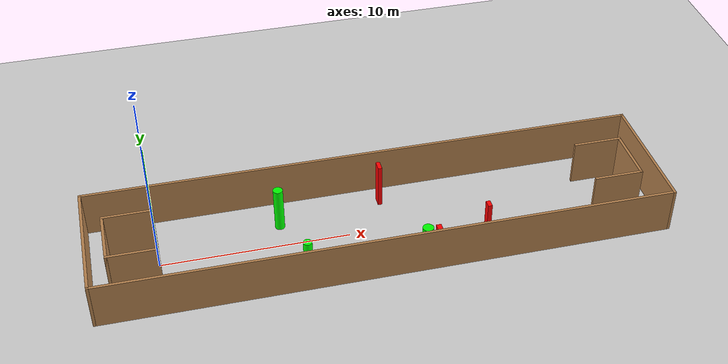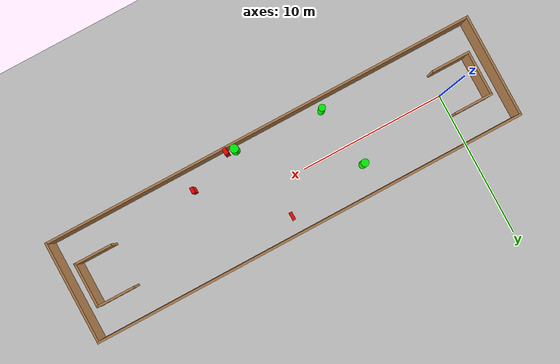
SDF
<sdf version="1.7">
 <world name="default">
  <light name="sun" type="directional">
   <pose>0 0 10 0 -0 0</pose>
   <diffuse>0.8 0.8 0.8 1</diffuse>
   <specular>0.2 0.2 0.2 1</specular>
   <attenuation>
    <range>1000</range>
    <constant>0.9</constant>
    <linear>0.01</linear>
    <quadratic>0.001</quadratic>
   </attenuation>
   <direction>-0.5 0.1 -0.9</direction>
   <spot><inner_angle>0</inner_angle><outer_angle>0</outer_angle><falloff>0</falloff></spot>
  </light>
  <model name="ground_plane">
   <static>1</static>
   <link name="link">
    <collision name="collision">
     <geometry><plane><normal>0 0 1</normal><size>100 100</size></plane></geometry>
     <surface>
      <contact><collide_bitmask>65535</collide_bitmask></contact>
      <friction><ode><mu>100</mu><mu2>50</mu2></ode></friction>
     </surface>
    </collision>
    <visual name="visual">
     <cast_shadows>0</cast_shadows>
     <geometry><plane><normal>0 0 1</normal><size>100 100</size></plane></geometry>
     <material>
      <script><uri>file://media/materials/scripts/gazebo.material</uri><name>Gazebo/Grey</name></script>
     </material>
    </visual>
   </link>
  </model>
  <gravity>0 0 -9.8</gravity>
  <magnetic_field>6e-06 2.3e-05 -4.2e-05</magnetic_field>
  <atmosphere type="adiabatic"/>
  <physics type="ode">
   <max_step_size>0.001</max_step_size>
   <real_time_factor>1</real_time_factor>
   <real_time_update_rate>1000</real_time_update_rate>
  </physics>
  <scene><ambient>0.4 0.4 0.4 1</ambient><background>0.7 0.7 0.7 1</background><shadows>1</shadows></scene>
  <spherical_coordinates>
   <surface_model>EARTH_WGS84</surface_model>
   <latitude_deg>0</latitude_deg>
   <longitude_deg>0</longitude_deg>
   <elevation>0</elevation>
   <heading_deg>0</heading_deg>
  </spherical_coordinates>
  <model name="my_base_walls">
   <link name="Wall_0">
    <collision name="Wall_0_Collision">
     <geometry><box><size>7.15 0.15 2.5</size></box></geometry>
     <pose>0 0 1.25 0 -0 0</pose>
    </collision>
    <visual name="Wall_0_Visual">
     <pose>0 0 1.25 0 -0 0</pose>
     <geometry><box><size>7.15 0.15 2.5</size></box></geometry>
     <material>
      <script><uri>file://media/materials/scripts/gazebo.material</uri><name>Gazebo/Wood</name></script>
      <ambient>1 1 1 1</ambient>
     </material>
     <meta><layer>0</layer></meta>
    </visual>
    <pose>-15 0 0 0 -0 1.5708</pose>
   </link>
   <link name="Wall_10">
    <collision name="Wall_10_Collision">
     <geometry><box><size>2.65 0.15 2.5</size></box></geometry>
     <pose>0 0 1.25 0 -0 0</pose>
    </collision>
    <visual name="Wall_10_Visual">
     <pose>0 0 1.25 0 -0 0</pose>
     <geometry><box><size>2.65 0.15 2.5</size></box></geometry>
     <material>
      <script><uri>file://media/materials/scripts/gazebo.material</uri><name>Gazebo/Wood</name></script>
      <ambient>1 1 1 1</ambient>
     </material>
     <meta><layer>0</layer></meta>
    </visual>
    <pose>-12.75 -1.5 0 0 -0 0</pose>
   </link>
   <link name="Wall_12">
    <collision name="Wall_12_Collision">
     <geometry><box><size>2.65 0.15 2.5</size></box></geometry>
     <pose>0 0 1.25 0 -0 0</pose>
    </collision>
    <visual name="Wall_12_Visual">
     <pose>0 0 1.25 0 -0 0</pose>
     <geometry><box><size>2.65 0.15 2.5</size></box></geometry>
     <material>
      <script><uri>file://media/materials/scripts/gazebo.material</uri><name>Gazebo/Wood</name></script>
      <ambient>1 1 1 1</ambient>
     </material>
     <meta><layer>0</layer></meta>
    </visual>
    <pose>-12.75 1.5 0 0 -0 0</pose>
   </link>
   <link name="Wall_14">
    <collision name="Wall_14_Collision">
     <geometry><box><size>3.15 0.15 2.5</size></box></geometry>
     <pose>0 0 1.25 0 -0 0</pose>
    </collision>
    <visual name="Wall_14_Visual">
     <pose>0 0 1.25 0 -0 0</pose>
     <geometry><box><size>3.15 0.15 2.5</size></box></geometry>
     <material>
      <script><uri>file://media/materials/scripts/gazebo.material</uri><name>Gazebo/Wood</name></script>
      <ambient>1 1 1 1</ambient>
     </material>
     <meta><layer>0</layer></meta>
    </visual>
    <pose>14 0 0 0 -0 -1.5708</pose>
   </link>
   <link name="Wall_15">
    <collision name="Wall_15_Collision">
     <geometry><box><size>2.65 0.15 2.5</size></box></geometry>
     <pose>0 0 1.25 0 -0 0</pose>
    </collision>
    <visual name="Wall_15_Visual">
     <pose>0 0 1.25 0 -0 0</pose>
     <geometry><box><size>2.65 0.15 2.5</size></box></geometry>
     <material>
      <script><uri>file://media/materials/scripts/gazebo.material</uri><name>Gazebo/Wood</name></script>
      <ambient>1 1 1 1</ambient>
     </material>
     <meta><layer>0</layer></meta>
    </visual>
    <pose>12.75 -1.5 0 0 -0 3.14159</pose>
   </link>
   <link name="Wall_17">
    <collision name="Wall_17_Collision">
     <geometry><box><size>2.65 0.15 2.5</size></box></geometry>
     <pose>0 0 1.25 0 -0 0</pose>
    </collision>
    <visual name="Wall_17_Visual">
     <pose>0 0 1.25 0 -0 0</pose>
     <geometry><box><size>2.65 0.15 2.5</size></box></geometry>
     <material>
      <script><uri>file://media/materials/scripts/gazebo.material</uri><name>Gazebo/Wood</name></script>
      <ambient>1 1 1 1</ambient>
     </material>
     <meta><layer>0</layer></meta>
    </visual>
    <pose>12.75 1.5 0 0 -0 3.14159</pose>
   </link>
   <link name="Wall_2">
    <collision name="Wall_2_Collision">
     <geometry><box><size>30.15 0.15 2.5</size></box></geometry>
     <pose>0 0 1.25 0 -0 0</pose>
    </collision>
    <visual name="Wall_2_Visual">
     <pose>0 0 1.25 0 -0 0</pose>
     <geometry><box><size>30.15 0.15 2.5</size></box></geometry>
     <material>
      <script><uri>file://media/materials/scripts/gazebo.material</uri><name>Gazebo/Wood</name></script>
      <ambient>1 1 1 1</ambient>
     </material>
     <meta><layer>0</layer></meta>
    </visual>
    <pose>-0 -3.5 0 0 -0 0</pose>
   </link>
   <link name="Wall_4">
    <collision name="Wall_4_Collision">
     <geometry><box><size>30.15 0.15 2.5</size></box></geometry>
     <pose>0 0 1.25 0 -0 0</pose>
    </collision>
    <visual name="Wall_4_Visual">
     <pose>0 0 1.25 0 -0 0</pose>
     <geometry><box><size>30.15 0.15 2.5</size></box></geometry>
     <material>
      <script><uri>file://media/materials/scripts/gazebo.material</uri><name>Gazebo/Wood</name></script>
      <ambient>1 1 1 1</ambient>
     </material>
     <meta><layer>0</layer></meta>
    </visual>
    <pose>-0 3.5 0 0 -0 0</pose>
   </link>
   <link name="Wall_6">
    <collision name="Wall_6_Collision">
     <geometry><box><size>7.15 0.15 2.5</size></box></geometry>
     <pose>0 0 1.25 0 -0 0</pose>
    </collision>
    <visual name="Wall_6_Visual">
     <pose>0 0 1.25 0 -0 0</pose>
     <geometry><box><size>7.15 0.15 2.5</size></box></geometry>
     <material>
      <script><uri>file://media/materials/scripts/gazebo.material</uri><name>Gazebo/Wood</name></script>
      <ambient>1 1 1 1</ambient>
     </material>
     <meta><layer>0</layer></meta>
    </visual>
    <pose>15 0 0 0 -0 -1.5708</pose>
   </link>
   <link name="Wall_9">
    <collision name="Wall_9_Collision">
     <geometry><box><size>3.15 0.15 2.5</size></box></geometry>
     <pose>0 0 1.25 0 -0 0</pose>
    </collision>
    <visual name="Wall_9_Visual">
     <pose>0 0 1.25 0 -0 0</pose>
     <geometry><box><size>3.15 0.15 2.5</size></box></geometry>
     <material>
      <script><uri>file://media/materials/scripts/gazebo.material</uri><name>Gazebo/Wood</name></script>
      <ambient>1 1 1 1</ambient>
     </material>
     <meta><layer>0</layer></meta>
    </visual>
    <pose>-14 0 0 0 -0 -1.5708</pose>
   </link>
   <static>1</static>
   <pose>11.5 0 0 0 -0 0</pose>
  </model>
  <model name="cylinder1">
   <static>1</static>
   <link name="link">
    <inertial>
     <mass>1</mass>
     <inertia><ixx>0.5</ixx><ixy>0</ixy><ixz>0</ixz><iyy>0.5</iyy><iyz>0</iyz><izz>1</izz></inertia>
    </inertial>
    <collision name="collision">
     <geometry><cylinder><radius>0.23085233835303423</radius><length>2.5</length></cylinder></geometry>
    </collision>
    <visual name="visual">
     <geometry><cylinder><radius>0.23085233835303423</radius><length>2.5</length></cylinder></geometry>
     <material>
      <ambient>0 1 0 1</ambient>
      <diffuse>0 1 0 1</diffuse>
      <specular>0.1 0.1 0.1 1</specular>
      <emissive>0 0 0 0</emissive>
     </material>
    </visual>
   </link>
   <pose>7.260262171378455 -2.796428560100993 1.25 0 0 0</pose>
  </model>
  <model name="cylinder2">
   <static>1</static>
   <link name="link">
    <inertial>
     <mass>1</mass>
     <inertia><ixx>0.5</ixx><ixy>0</ixy><ixz>0</ixz><iyy>0.5</iyy><iyz>0</iyz><izz>1</izz></inertia>
    </inertial>
    <collision name="collision">
     <geometry><cylinder><radius>0.2602828584122165</radius><length>2.5</length></cylinder></geometry>
    </collision>
    <visual name="visual">
     <geometry><cylinder><radius>0.2602828584122165</radius><length>2.5</length></cylinder></geometry>
     <material>
      <ambient>0 1 0 1</ambient>
      <diffuse>0 1 0 1</diffuse>
      <specular>0.1 0.1 0.1 1</specular>
      <emissive>0 0 0 0</emissive>
     </material>
    </visual>
   </link>
   <pose>6.5363348415456635 1.5295093749549329 1.25 0 0 0</pose>
  </model>
  <model name="cylinder3">
   <static>1</static>
   <link name="link">
    <inertial>
     <mass>1</mass>
     <inertia><ixx>0.5</ixx><ixy>0</ixy><ixz>0</ixz><iyy>0.5</iyy><iyz>0</iyz><izz>1</izz></inertia>
    </inertial>
    <collision name="collision">
     <geometry><cylinder><radius>0.2848624083746704</radius><length>2.5</length></cylinder></geometry>
    </collision>
    <visual name="visual">
     <geometry><cylinder><radius>0.2848624083746704</radius><length>2.5</length></cylinder></geometry>
     <material>
      <ambient>0 1 0 1</ambient>
      <diffuse>0 1 0 1</diffuse>
      <specular>0.1 0.1 0.1 1</specular>
      <emissive>0 0 0 0</emissive>
     </material>
    </visual>
   </link>
   <pose>13.333995107033749 -3.163687407698835 1.25 0 0 0</pose>
  </model>
  <model name="box1">
   <static>1</static>
   <link name="link">
    <inertial>
     <mass>1</mass>
     <inertia><ixx>0.083</ixx><ixy>0</ixy><ixz>0</ixz><iyy>0.083</iyy><iyz>0</iyz><izz>0.083</izz></inertia>
    </inertial>
    <collision name="collision">
     <geometry><box><size>0.21985548459792997 0.5553172553171073 2.5</size></box></geometry>
    </collision>
    <visual name="visual">
     <geometry><box><size>0.21985548459792997 0.5553172553171073 2.5</size></box></geometry>
     <material>
      <ambient>1 0 0 1</ambient>
      <diffuse>1 0 0 1</diffuse>
      <specular>0.1 0.1 0.1 1</specular>
      <emissive>0 0 0 0</emissive>
     </material>
    </visual>
    <sensor name="my_contact" type="contact">
     <contact><collision>box_collision</collision><topic>__default_topic__</topic></contact>
    </sensor>
   </link>
   <pose>12.13450994712199 2.3018905163516505 1.25 0 0 0</pose>
  </model>
  <model name="box2">
   <static>1</static>
   <link name="link">
    <inertial>
     <mass>1</mass>
     <inertia><ixx>0.083</ixx><ixy>0</ixy><ixz>0</ixz><iyy>0.083</iyy><iyz>0</iyz><izz>0.083</izz></inertia>
    </inertial>
    <collision name="collision">
     <geometry><box><size>0.2674883351022995 0.43481743236913506 2.5</size></box></geometry>
    </collision>
    <visual name="visual">
     <geometry><box><size>0.2674883351022995 0.43481743236913506 2.5</size></box></geometry>
     <material>
      <ambient>1 0 0 1</ambient>
      <diffuse>1 0 0 1</diffuse>
      <specular>0.1 0.1 0.1 1</specular>
      <emissive>0 0 0 0</emissive>
     </material>
    </visual>
    <sensor name="my_contact" type="contact">
     <contact><collision>box_collision</collision><topic>__default_topic__</topic></contact>
    </sensor>
   </link>
   <pose>13.899865531625393 -3.2796434085417028 1.25 0 0 0</pose>
  </model>
  <model name="box3">
   <static>1</static>
   <link name="link">
    <inertial>
     <mass>1</mass>
     <inertia><ixx>0.083</ixx><ixy>0</ixy><ixz>0</ixz><iyy>0.083</iyy><iyz>0</iyz><izz>0.083</izz></inertia>
    </inertial>
    <collision name="collision">
     <geometry><box><size>0.23143118930348835 0.40783313998003784 2.5</size></box></geometry>
    </collision>
    <visual name="visual">
     <geometry><box><size>0.23143118930348835 0.40783313998003784 2.5</size></box></geometry>
     <material>
      <ambient>1 0 0 1</ambient>
      <diffuse>1 0 0 1</diffuse>
      <specular>0.1 0.1 0.1 1</specular>
      <emissive>0 0 0 0</emissive>
     </material>
    </visual>
    <sensor name="my_contact" type="contact">
     <contact><collision>box_collision</collision><topic>__default_topic__</topic></contact>
    </sensor>
   </link>
   <pose>16.871097597170206 -2.105016569546065 1.25 0 0 0</pose>
  </model>
 </world>
</sdf>
